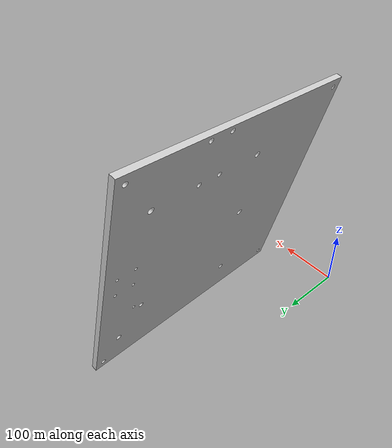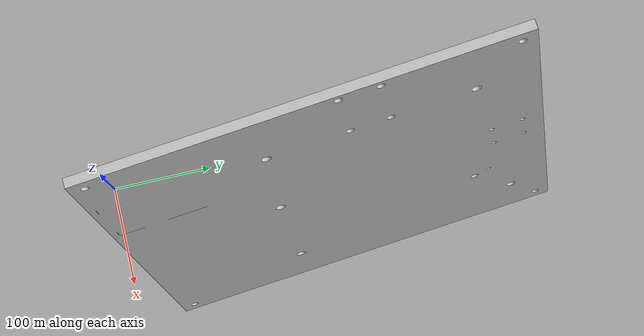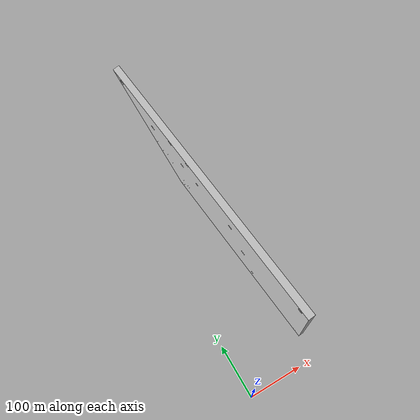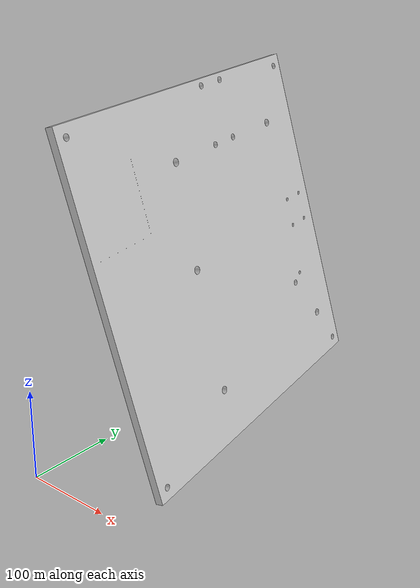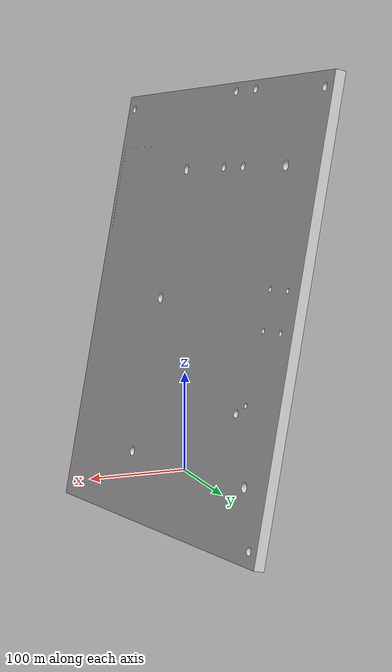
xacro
<?xml version="1.0" ?>
<robot name="task_board" xmlns:xacro="http://www.ros.org/wiki/xacro">

  <xacro:arg name="load_round_belt_pulleys" default="false" />
  <xacro:arg name="load_timing_belt_pulleys" default="false" />
  <xacro:arg name="load_bike_chain_pulleys" default="false" />

  <!-- board side length is .384m -->

  <link name="board">
    <visual name="board">
      <origin xyz="0 0 0" rpy="0 0 0"/>
      <geometry>
        <mesh filename="common/task_board_just_board.glb" scale="1 1 1"/>
      </geometry>
      <material name="light_grey">
        <color rgba="0.8 0.8 0.8 1"/>
      </material>
    </visual>
    <collision name="board_collision">
      <origin xyz="0.192 0.192 -0.005" rpy="0 0 0"/>
      <geometry>
        <box size="0.384 0.384 0.01"/>
      </geometry>
    </collision>
  </link>

  <!-- Bike Chain Pulleys -->
  <xacro:if value="$(arg load_bike_chain_pulleys)">
    <joint name="chain_tensioner_bracket_joint" type="fixed">
      <parent link="board" />
      <child link="chain_tensioner_bracket" />
      <origin xyz="0.2395 0.343927 0.006" rpy="0 0 ${pi/2}" />
      <axis xyz="1 0 0" />
      <limit lower="-1.0" upper="1.0" effort="100" velocity="100" />
    </joint>
    <link name="chain_tensioner_bracket">
      <visual>
        <origin xyz="0 0 0" rpy="0 0 0" />
        <geometry>
          <mesh filename="bike_chain_task/tensioner_bracket.gltf" />
        </geometry>
      </visual>
      <collision>
        <origin xyz="0 0 0" rpy="0 0 0" />
        <geometry>
          <mesh filename="bike_chain_task/tensioner_bracket.gltf" />
        </geometry>
      </collision>
      <inertial>
        <mass value="1.0" />
        <origin xyz="0 0 0" />
        <inertia ixx="1.0" ixy="0.0" ixz="0.0" iyy="1.0" iyz="0.0" izz="1.0" />
      </inertial>
    </link>
    <joint name="chain_tensioner_slide_joint" type="fixed">
      <parent link="chain_tensioner_bracket" />
      <child link="chain_tensioner_slide" />
      <origin xyz="-0.021 0 0" rpy="0 0 0" />
      <axis xyz="1 0 0" />
      <limit lower="-1.0" upper="1.0" effort="100" velocity="100" />
    </joint>
    <!-- dummy link -->
    <link name="chain_tensioner_slide">
    </link>
    <joint name="chain_tensioner_joint" type="prismatic">
    <!-- .062 slide limit -->
      <parent link="chain_tensioner_slide" />
      <child link="chain_tensioner_sprocket" />
      <origin xyz="0 0 0" rpy="0 0 0" />
      <axis xyz="1 0 0" />
      <limit lower="0" upper="0.04" effort="100" velocity="100" />
    </joint>
    <link name="chain_tensioner_sprocket">
      <visual>
        <origin xyz="0 0 0" rpy="${pi/2} 0 0" />
        <geometry>
          <mesh filename="bike_chain_task/tensioner_bolt.gltf" />
        </geometry>
        <material name="material_name">
          <color rgba="1 1 1 1" />
        </material>
      </visual>
      <visual>
        <origin xyz="0 0 .015" rpy="0 ${-pi/2} 0" />
        <geometry>
          <mesh filename="bike_chain_task/tensioner_bearing.gltf" />
        </geometry>
        <material name="material_name">
          <color rgba="1 1 1 1" />
        </material>
      </visual>
      <visual>
        <origin xyz="0 0 0.012" rpy="0 0 0" />
        <geometry>
          <mesh filename="bike_chain_task/tensioner_sprocket.obj" />
        </geometry>
        <material name="material_name">
          <color rgba="1 1 1 1" />
        </material>
      </visual>
      <collision>
        <origin xyz="0 0 0.012" rpy="0 0 0" />
        <geometry>
          <mesh filename="bike_chain_task/tensioner_sprocket.obj" />
        </geometry>
        <material name="material_name">
          <color rgba="1 1 1 1" />
        </material>
      </collision>
      <collision>
        <origin xyz="0 0 .015" rpy="0 ${-pi/2} 0" />
        <geometry>
          <mesh filename="bike_chain_task/tensioner_bearing.gltf" />
        </geometry>
        <material name="material_name">
          <color rgba="1 1 1 1" />
        </material>
      </collision>
      <collision>
        <origin xyz="0 0 0" rpy="${pi/2} 0 0" />
        <geometry>
          <mesh filename="bike_chain_task/tensioner_bolt.gltf" />
        </geometry>
      </collision>
      <inertial>
        <mass value="1.0" />
        <origin xyz="0 0 0" />
        <inertia ixx="1.0" ixy="0.0" ixz="0.0" iyy="1.0" iyz="0.0" izz="1.0" />
      </inertial>
    </link>
    <joint name="chain_small_sprocket_joint" type="fixed">
      <parent link="board" />
      <child link="chain_small_sprocket" />
      <origin xyz="0.33 0.311 0.020" rpy="0 0 0" />
    </joint>
    <link name="chain_small_sprocket">
      <visual>
        <origin xyz="0 0 0" rpy="0 0 0" />
        <geometry>
          <mesh filename="bike_chain_task/small_sprocket.obj" />
        </geometry>
      </visual>
      <collision>
        <origin xyz="0 0 0" rpy="0 0 0" />
        <geometry>
          <mesh filename="bike_chain_task/small_sprocket.obj" />
        </geometry>
      </collision>
      <inertial>
        <mass value="1.0" />
        <origin xyz="0 0 0" />
        <inertia ixx="1.0" ixy="0.0" ixz="0.0" iyy="1.0" iyz="0.0" izz="1.0" />
      </inertial>
    </link>
    <joint name="chain_large_sprocket_joint" type="fixed">
      <parent link="board" />
      <child link="chain_large_sprocket" />
      <origin xyz="0.15 0.311 0.023" rpy="0 0 0" />
    </joint>
    <link name="chain_large_sprocket">
      <visual>
        <origin xyz="0 0 0" rpy="0 0 0" />
        <geometry>
          <mesh filename="bike_chain_task/large_sprocket.obj" />
        </geometry>
      </visual>
      <collision>
        <origin xyz="0 0 0" rpy="0 0 0" />
        <geometry>
          <mesh filename="bike_chain_task/large_sprocket.obj" />
        </geometry>
      </collision>
      <inertial>
        <mass value="1.0" />
        <origin xyz="0 0 0" />
        <inertia ixx="1.0" ixy="0.0" ixz="0.0" iyy="1.0" iyz="0.0" izz="1.0" />
      </inertial>
    </link>
  </xacro:if>

  <!-- Round Belt Pulleys -->
  <xacro:if value="$(arg load_round_belt_pulleys)">
    <!-- bracket mounting length in y is .033m, in x is .028m-->
    <!-- task board edge to bracket closest mounting hole center in y is .1799m, in x is .3373m-->
    <joint name="small_round_pulley_bracket_joint" type="fixed">
      <parent link="board"/>
      <child link="small_round_pulley_bracket"/>
      <origin xyz="0.3504 0.1964 0" rpy="0 0 0"/>
    </joint>
    <link name="small_round_pulley_bracket">
      <inertial>
        <origin xyz="0 0 0" rpy="0 0 0"/>
        <mass value="0.05"/>
        <inertia ixx="3.06677e-05" iyy="3.0667375e-05" izz="6.0454911e-05" ixy="5.7518697e-14" ixz="1.6724428e-11" iyz="-1.9003215e-11"/>
      </inertial>
      <visual name="bracket_visual">
        <origin xyz="0 0 0" rpy="${pi/2} 0 ${pi/2}"/>
        <geometry>
          <mesh filename="round_belt_task/round_belt_task_board/small_round_pulley/slide_tensioner_bracket.gltf"/>
        </geometry>
        <material name="dark_grey">
          <color rgba="0.1 0.1 0.1 1"/>
        </material>
      </visual>
      <collision name="bracket_collision">
        <origin xyz="0 0 0" rpy="${pi/2} 0 ${pi/2}"/>
        <geometry>
          <mesh filename="round_belt_task/round_belt_task_board/small_round_pulley/slide_tensioner_bracket.gltf"/>
        </geometry>
      </collision>
    </link>
    <!-- x distance from edge of board to closest part of bracket 0.33839155m -->
    <!-- bracket sliding distance is .025m -->
    <joint name="small_round_pulley_slide_joint" type="fixed">
      <parent link="small_round_pulley_bracket"/>
      <child link="small_round_pulley_slide"/>
      <origin xyz="-0.01200845 -0.0004 0.0248" rpy="0 0 0"/>
      <axis xyz="1 0 0"/>
      <limit lower="0" upper="0.025" effort="10" velocity="1"/>
    </joint>
    <!-- insert dummy link for slide  -->
    <link name="small_round_pulley_slide">
      <inertial>
        <origin xyz="0 0 0" rpy="0 0 0"/>
        <mass value="0.05"/>
        <inertia ixx="3.06677e-05" iyy="3.0667375e-05" izz="6.0454911e-05" ixy="5.7518697e-14" ixz="1.6724428e-11" iyz="-1.9003215e-11"/>
      </inertial>
    </link>
    <joint name="small_round_pulley_joint" type="prismatic">
      <parent link="small_round_pulley_slide"/>
      <child link="small_round_pulley"/>
      <origin xyz="0 0 0" rpy="0 0 0"/>
      <axis xyz="1 0 0"/>
      <limit lower="0" upper="0.025" effort="10" velocity="1"/>
    </joint>
    <link name="small_round_pulley">
      <inertial>
        <origin xyz="0 0 0" rpy="0 0 0"/>
        <mass value="0.05"/>
        <inertia ixx="3.06677e-05" iyy="3.0667375e-05" izz="6.0454911e-05" ixy="5.7518697e-14" ixz="1.6724428e-11" iyz="-1.9003215e-11"/>
      </inertial>
      <visual name="bearing_visual">
        <origin xyz="0 0 0.0035" rpy="0 ${pi/2} 0"/>
        <geometry>
          <mesh filename="round_belt_task/round_belt_task_board/small_round_pulley/slide_tensioner_bearing.gltf"/>
        </geometry>
        <material name="dark_grey">
          <color rgba="0.1 0.1 0.1 1"/>
        </material>
      </visual>
      <visual name="bolt_visual">
        <origin xyz="0 0 0" rpy="0 ${pi/2} 0"/>
        <geometry>
          <mesh filename="round_belt_task/round_belt_task_board/small_round_pulley/slide_tensioner_bolt.gltf"/>
        </geometry>
        <material name="dark_grey">
          <color rgba="0.1 0.1 0.1 1"/>
        </material>
      </visual>
      <visual name="first_half">
        <origin xyz="0 0 0" rpy="0 0 0"/>
        <geometry>
          <mesh filename="round_belt_task/round_belt_task_board/small_round_pulley/small_round_pulley_half.obj" scale="0.001 0.001 0.001"/>
        </geometry>
        <material name="white">
          <color rgba="0.8 0.8 0.8 1"/>
        </material>
      </visual>
      <visual name="second_half">
        <origin xyz="0 0 0" rpy="${pi} 0 0"/>
        <geometry>
          <mesh filename="round_belt_task/round_belt_task_board/small_round_pulley/small_round_pulley_half.obj" scale="0.001 0.001 0.001"/>
        </geometry>
        <material name="white">
          <color rgba="0.8 0.8 0.8 1"/>
        </material>
      </visual>
      <collision name="small_round_pulley_simple_collision">
        <origin xyz="0 0 0" rpy="0 0 0"/>
        <geometry>
          <cylinder radius="0.015" length="0.009"/>
        </geometry>
      </collision>
    </link>

    <joint name="large_round_pulley_joint" type="fixed">
      <parent link="board"/>
      <child link="large_round_pulley"/>
      <origin xyz="0 0 0" rpy="0 0 0"/>
    </joint>
    <link name="large_round_pulley">
      <inertial>
        <origin xyz="0 0 0" rpy="0 0 0"/>
        <mass value="0.05"/>
        <inertia ixx="3.06677e-05" iyy="3.0667375e-05" izz="6.0454911e-05" ixy="5.7518697e-14" ixz="1.6724428e-11" iyz="-1.9003215e-11"/>
      </inertial>
      <visual name="first_half">
        <origin xyz="0.140 0.196 0.0248" rpy="0 0 0"/>
        <geometry>
          <mesh filename="round_belt_task/round_belt_task_board/large_round_pulley/large_round_pulley_half.obj" scale="0.001 0.001 0.001"/>
        </geometry>
        <material name="dark_grey">
          <color rgba="0.1 0.1 0.1 1"/>
        </material>
      </visual>
      <collision name="first_half_volume">
        <origin xyz="0.140 0.196 0.0248" rpy="0 0 0"/>
        <geometry>
          <mesh filename="round_belt_task/round_belt_task_board/large_round_pulley/large_round_pulley_half.obj" scale="0.001 0.001 0.001"/>
        </geometry>
      </collision>
      <visual name="second_half">
        <origin xyz="0.140 0.196 0.0248" rpy="${pi} 0 0"/>
        <geometry>
          <mesh filename="round_belt_task/round_belt_task_board/large_round_pulley/large_round_pulley_half.obj" scale="0.001 0.001 0.001"/>
        </geometry>
        <material name="dark_grey">
          <color rgba="0.1 0.1 0.1 1"/>
        </material>
      </visual>
      <collision name="second_half_volume">
        <origin xyz="0.140 0.196 0.0248" rpy="${pi} 0 0"/>
        <geometry>
          <mesh filename="round_belt_task/round_belt_task_board/large_round_pulley/large_round_pulley_half.obj" scale="0.001 0.001 0.001"/>
        </geometry>
      </collision>
    </link>
  </xacro:if>

  <!-- Timing Belt Pulleys -->
  <xacro:if value="$(arg load_timing_belt_pulleys)">
    <link name="small_timing_pulley">
      <inertial>
        <origin xyz="0 0 0" rpy="0 0 0"/>
        <mass value="0.3"/>
        <inertia ixx="3.06677e-05" ixy="5.7518697e-14" ixz="1.6724428e-11"
                 iyy="3.0667375e-05" iyz="-1.9003215e-11"
                 izz="6.0454911e-05"/>
      </inertial>

      <visual>
        <origin xyz="0.348 0.058 0.041" rpy="0 0 0"/>
        <geometry>
          <mesh filename="timing_belt_task/timing_belt_small_pulley.obj"/>
        </geometry>
        <material name="small_pulley_grey">
          <color rgba="0.5 0.5 0.5 1"/>
        </material>
      </visual>

      <collision>
        <origin xyz="0.348 0.058 0.025" rpy="0 0 0"/>
        <geometry>
          <cylinder radius="0.02505" length="0.027"/>
        </geometry>
      </collision>
      <collision>
        <origin xyz="0.348 0.058 0.03975" rpy="0 0 0"/>
        <geometry>
          <cylinder radius="0.0275" length="0.0025"/>
        </geometry>
      </collision>
      <collision>
        <origin xyz="0.348 0.058 0.01025" rpy="0 0 0"/>
        <geometry>
          <cylinder radius="0.0275" length="0.0025"/>
        </geometry>
      </collision>
      <collision>
        <origin xyz="0.348 0.058 0.045" rpy="0 0 0"/>
        <geometry>
          <cylinder radius="0.005" length="0.006"/>
        </geometry>
      </collision>
    </link>

    <link name="large_timing_pulley">
      <inertial>
        <origin xyz="0 0 0" rpy="0 0 0"/>
        <mass value="0.5"/>
        <inertia ixx="3.06677e-05" ixy="5.7518697e-14" ixz="1.6724428e-11"
                 iyy="3.0667375e-05" iyz="-1.9003215e-11"
                 izz="6.0454911e-05"/>
      </inertial>

      <visual>
        <origin xyz="0.134 0.058 0.043" rpy="0 0 0"/>
        <geometry>
          <mesh filename="timing_belt_task/timing_belt_large_pulley.obj"/>
        </geometry>
        <material name="large_pulley_grey">
          <color rgba="0.5 0.5 0.5 1"/>
        </material>
      </visual>

      <collision>
        <origin xyz="0.134 0.058 0.027" rpy="0 0 0"/>
        <geometry>
          <cylinder radius="0.047325" length="0.027"/>
        </geometry>
      </collision>
      <collision>
        <origin xyz="0.134 0.058 0.04175" rpy="0 0 0"/>
        <geometry>
          <cylinder radius="0.0495" length="0.0025"/>
        </geometry>
      </collision>
      <collision>
        <origin xyz="0.134 0.058 0.01225" rpy="0 0 0"/>
        <geometry>
          <cylinder radius="0.0495" length="0.0025"/>
        </geometry>
      </collision>
      <collision>
        <origin xyz="0.134 0.058 0.047" rpy="0 0 0"/>
        <geometry>
          <cylinder radius="0.005" length="0.006"/>
        </geometry>
      </collision>
    </link>

    <joint name="small_timing_pulley_joint" type="fixed">
      <parent link="board"/>
      <child link="small_timing_pulley"/>
      <origin xyz="0 0 0" rpy="0 0 0"/>
    </joint>

    <joint name="large_timing_pulley_joint" type="fixed">
      <parent link="board"/>
      <child link="large_timing_pulley"/>
      <origin xyz="0 0 0" rpy="0 0 0"/>
    </joint>
    <joint name="timing_belt_tensioner_joint" type="fixed">
      <parent link="board" />
      <child link="timing_belt_tensioner" />
      <origin xyz="0.315 0.112 0" rpy="0 0 ${33*pi/50}" />
      <axis xyz="1 0 0" />
      <limit lower="-1.0" upper="1.0" effort="100" velocity="100" />
    </joint>
    <link name="timing_belt_tensioner">
      <visual>
        <origin xyz="0 0 0" rpy="0 0 0" />
        <geometry>
          <mesh filename="timing_belt_task/tensioner_base.gltf" />
        </geometry>
        <material name="material_name">
          <color rgba="1 1 1 1" />
        </material>
      </visual>
      <collision>
        <origin xyz="0 0 0" rpy="0 0 0" />
        <geometry>
          <mesh filename="timing_belt_task/tensioner_base.gltf" />
        </geometry>
      </collision>
      <inertial>
        <mass value="1.0" />
        <origin xyz="0 0 0" />
        <inertia ixx="1.0" ixy="0.0" ixz="0.0" iyy="1.0" iyz="0.0" izz="1.0" />
      </inertial>
    </link>
    <joint name="timing_belt_tensioner_arm_joint" type="revolute">
      <parent link="timing_belt_tensioner" />
      <child link="timing_belt_tensioner_arm" />
      <origin xyz="0 0 0" rpy="0 0 0" />
      <axis xyz="1 0 0" />
      <limit lower="-1.0" upper="1.0" effort="100" velocity="100" />
    </joint>
    <link name="timing_belt_tensioner_arm">
      <visual>
        <origin xyz="0 0 0" rpy="0 0 0" />
        <geometry>
          <mesh filename="timing_belt_task/tensioner_arm.gltf" />
        </geometry>
        <material name="material_name">
          <color rgba="1 1 1 1" />
        </material>
      </visual>
      <visual>
        <origin xyz="0 0.08 0.04492" rpy="${-pi/2} 0 0" />
        <geometry>
          <mesh filename="timing_belt_task/tensioner_rotary.gltf" />
        </geometry>
        <material name="material_name">
          <color rgba="1 1 1 1" />
        </material>
      </visual>
      <collision>
        <origin xyz="0 0 0" rpy="0 0 0" />
        <geometry>
          <mesh filename="timing_belt_task/tensioner_arm.gltf" />
        </geometry>
      </collision>
      <collision>
        <origin xyz="0 0.08 0.04492" rpy="${-pi/2} 0 0" />
        <geometry>
          <mesh filename="timing_belt_task/tensioner_rotary.gltf" />
        </geometry>
      </collision>
      <inertial>
        <mass value="1.0" />
        <origin xyz="0 0 0" />
        <inertia ixx="1.0" ixy="0.0" ixz="0.0" iyy="1.0" iyz="0.0" izz="1.0" />
      </inertial>
    </link>
  </xacro:if>

</robot>
